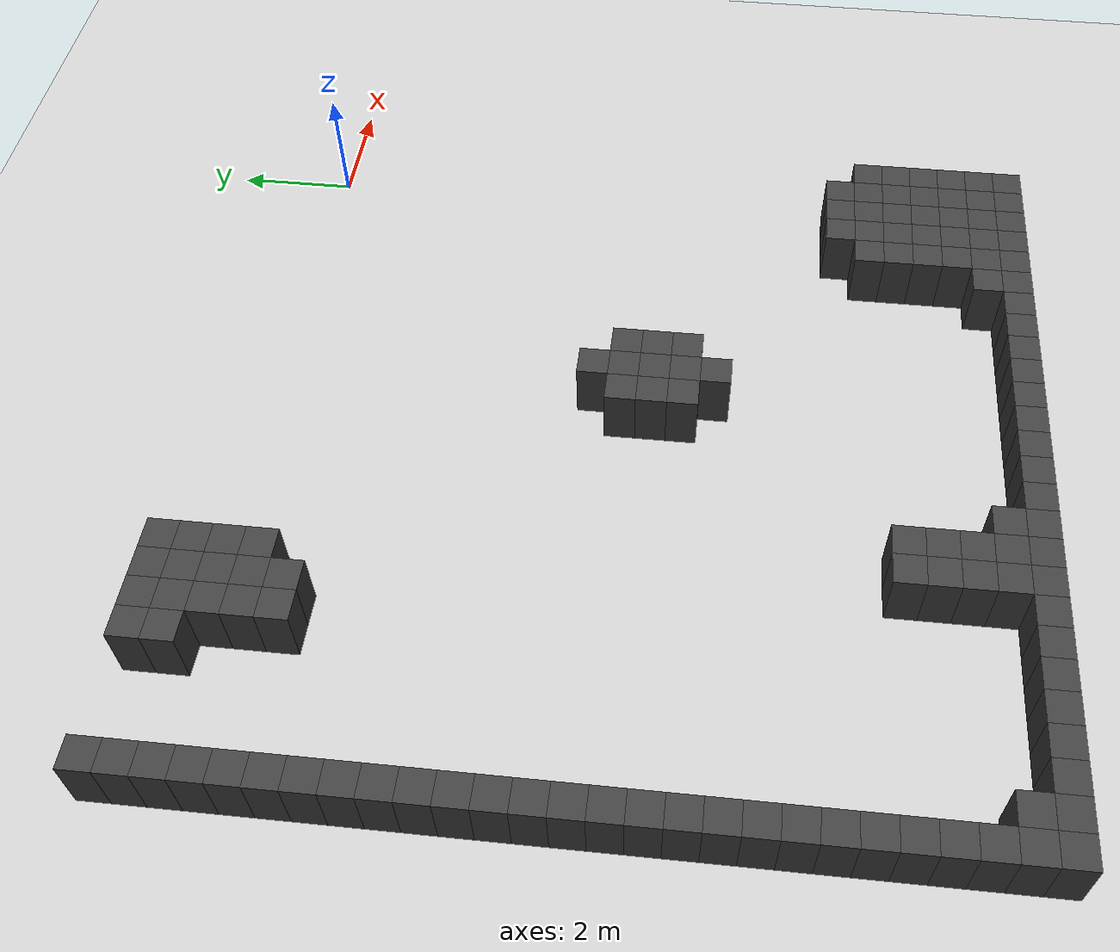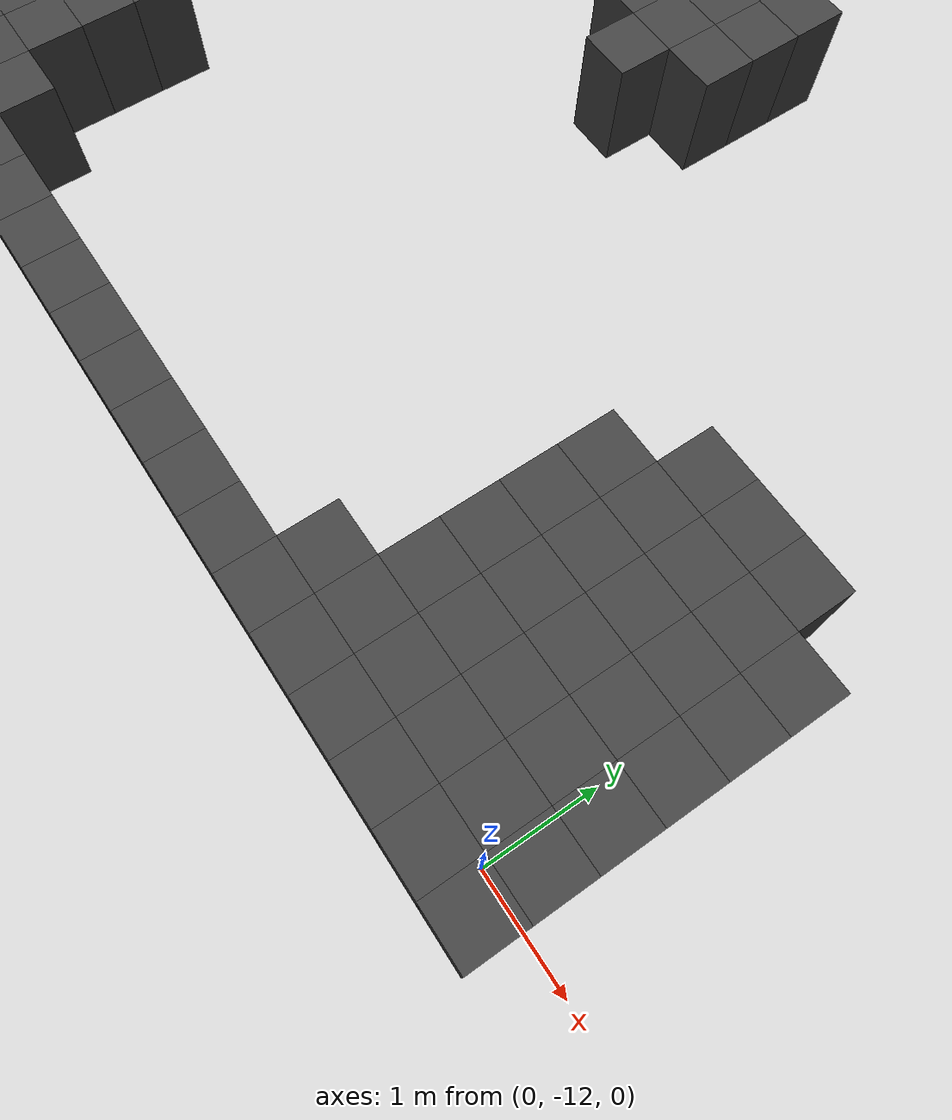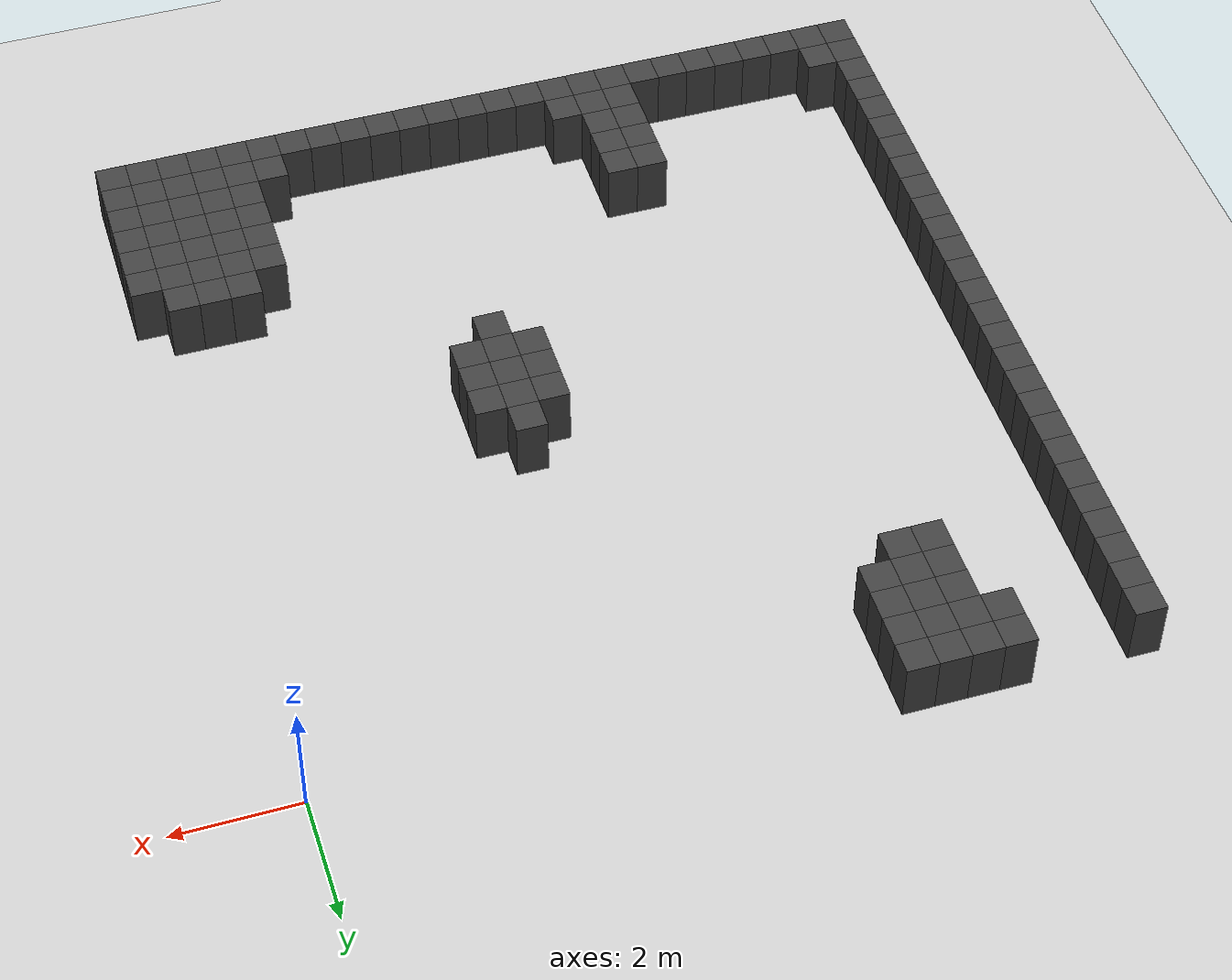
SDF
<sdf version="1.7">
 <world name="map_5836">
  <model name="ground_plane">
   <static>true</static>
   <link name="link">
    <collision name="collision">
     <geometry><plane><normal>0 0 1</normal><size>200 200</size></plane></geometry>
    </collision>
    <visual name="visual">
     <geometry><plane><normal>0 0 1</normal><size>200 200</size></plane></geometry>
     <material><ambient>0.8 0.8 0.8 1</ambient><diffuse>0.8 0.8 0.8 1</diffuse></material>
    </visual>
   </link>
  </model>
  <model name="maze_environment">
   <static>true</static>
   <link name="wall_254">
    <pose>-12.250 0.750 0.500 0 0 0</pose>
    <collision name="col"><geometry><box><size>0.5 0.5 1.0</size></box></geometry></collision>
    <visual name="vis">
     <geometry><box><size>0.5 0.5 1.0</size></box></geometry>
     <material><ambient>0.15 0.15 0.15 1</ambient><diffuse>0.25 0.25 0.25 1</diffuse></material>
    </visual>
   </link>
   <link name="wall_255">
    <pose>-10.250 0.750 0.500 0 0 0</pose>
    <collision name="col"><geometry><box><size>0.5 0.5 1.0</size></box></geometry></collision>
    <visual name="vis">
     <geometry><box><size>0.5 0.5 1.0</size></box></geometry>
     <material><ambient>0.15 0.15 0.15 1</ambient><diffuse>0.25 0.25 0.25 1</diffuse></material>
    </visual>
   </link>
   <link name="wall_256">
    <pose>-9.750 0.750 0.500 0 0 0</pose>
    <collision name="col"><geometry><box><size>0.5 0.5 1.0</size></box></geometry></collision>
    <visual name="vis">
     <geometry><box><size>0.5 0.5 1.0</size></box></geometry>
     <material><ambient>0.15 0.15 0.15 1</ambient><diffuse>0.25 0.25 0.25 1</diffuse></material>
    </visual>
   </link>
   <link name="wall_257">
    <pose>-9.250 0.750 0.500 0 0 0</pose>
    <collision name="col"><geometry><box><size>0.5 0.5 1.0</size></box></geometry></collision>
    <visual name="vis">
     <geometry><box><size>0.5 0.5 1.0</size></box></geometry>
     <material><ambient>0.15 0.15 0.15 1</ambient><diffuse>0.25 0.25 0.25 1</diffuse></material>
    </visual>
   </link>
   <link name="wall_258">
    <pose>-8.750 0.750 0.500 0 0 0</pose>
    <collision name="col"><geometry><box><size>0.5 0.5 1.0</size></box></geometry></collision>
    <visual name="vis">
     <geometry><box><size>0.5 0.5 1.0</size></box></geometry>
     <material><ambient>0.15 0.15 0.15 1</ambient><diffuse>0.25 0.25 0.25 1</diffuse></material>
    </visual>
   </link>
   <link name="wall_265">
    <pose>-12.250 0.250 0.500 0 0 0</pose>
    <collision name="col"><geometry><box><size>0.5 0.5 1.0</size></box></geometry></collision>
    <visual name="vis">
     <geometry><box><size>0.5 0.5 1.0</size></box></geometry>
     <material><ambient>0.15 0.15 0.15 1</ambient><diffuse>0.25 0.25 0.25 1</diffuse></material>
    </visual>
   </link>
   <link name="wall_266">
    <pose>-10.250 0.250 0.500 0 0 0</pose>
    <collision name="col"><geometry><box><size>0.5 0.5 1.0</size></box></geometry></collision>
    <visual name="vis">
     <geometry><box><size>0.5 0.5 1.0</size></box></geometry>
     <material><ambient>0.15 0.15 0.15 1</ambient><diffuse>0.25 0.25 0.25 1</diffuse></material>
    </visual>
   </link>
   <link name="wall_267">
    <pose>-9.750 0.250 0.500 0 0 0</pose>
    <collision name="col"><geometry><box><size>0.5 0.5 1.0</size></box></geometry></collision>
    <visual name="vis">
     <geometry><box><size>0.5 0.5 1.0</size></box></geometry>
     <material><ambient>0.15 0.15 0.15 1</ambient><diffuse>0.25 0.25 0.25 1</diffuse></material>
    </visual>
   </link>
   <link name="wall_268">
    <pose>-9.250 0.250 0.500 0 0 0</pose>
    <collision name="col"><geometry><box><size>0.5 0.5 1.0</size></box></geometry></collision>
    <visual name="vis">
     <geometry><box><size>0.5 0.5 1.0</size></box></geometry>
     <material><ambient>0.15 0.15 0.15 1</ambient><diffuse>0.25 0.25 0.25 1</diffuse></material>
    </visual>
   </link>
   <link name="wall_269">
    <pose>-8.750 0.250 0.500 0 0 0</pose>
    <collision name="col"><geometry><box><size>0.5 0.5 1.0</size></box></geometry></collision>
    <visual name="vis">
     <geometry><box><size>0.5 0.5 1.0</size></box></geometry>
     <material><ambient>0.15 0.15 0.15 1</ambient><diffuse>0.25 0.25 0.25 1</diffuse></material>
    </visual>
   </link>
   <link name="wall_274">
    <pose>-12.250 -0.250 0.500 0 0 0</pose>
    <collision name="col"><geometry><box><size>0.5 0.5 1.0</size></box></geometry></collision>
    <visual name="vis">
     <geometry><box><size>0.5 0.5 1.0</size></box></geometry>
     <material><ambient>0.15 0.15 0.15 1</ambient><diffuse>0.25 0.25 0.25 1</diffuse></material>
    </visual>
   </link>
   <link name="wall_275">
    <pose>-9.750 -0.250 0.500 0 0 0</pose>
    <collision name="col"><geometry><box><size>0.5 0.5 1.0</size></box></geometry></collision>
    <visual name="vis">
     <geometry><box><size>0.5 0.5 1.0</size></box></geometry>
     <material><ambient>0.15 0.15 0.15 1</ambient><diffuse>0.25 0.25 0.25 1</diffuse></material>
    </visual>
   </link>
   <link name="wall_276">
    <pose>-9.250 -0.250 0.500 0 0 0</pose>
    <collision name="col"><geometry><box><size>0.5 0.5 1.0</size></box></geometry></collision>
    <visual name="vis">
     <geometry><box><size>0.5 0.5 1.0</size></box></geometry>
     <material><ambient>0.15 0.15 0.15 1</ambient><diffuse>0.25 0.25 0.25 1</diffuse></material>
    </visual>
   </link>
   <link name="wall_277">
    <pose>-8.750 -0.250 0.500 0 0 0</pose>
    <collision name="col"><geometry><box><size>0.5 0.5 1.0</size></box></geometry></collision>
    <visual name="vis">
     <geometry><box><size>0.5 0.5 1.0</size></box></geometry>
     <material><ambient>0.15 0.15 0.15 1</ambient><diffuse>0.25 0.25 0.25 1</diffuse></material>
    </visual>
   </link>
   <link name="wall_282">
    <pose>-12.250 -0.750 0.500 0 0 0</pose>
    <collision name="col"><geometry><box><size>0.5 0.5 1.0</size></box></geometry></collision>
    <visual name="vis">
     <geometry><box><size>0.5 0.5 1.0</size></box></geometry>
     <material><ambient>0.15 0.15 0.15 1</ambient><diffuse>0.25 0.25 0.25 1</diffuse></material>
    </visual>
   </link>
   <link name="wall_283">
    <pose>-9.750 -0.750 0.500 0 0 0</pose>
    <collision name="col"><geometry><box><size>0.5 0.5 1.0</size></box></geometry></collision>
    <visual name="vis">
     <geometry><box><size>0.5 0.5 1.0</size></box></geometry>
     <material><ambient>0.15 0.15 0.15 1</ambient><diffuse>0.25 0.25 0.25 1</diffuse></material>
    </visual>
   </link>
   <link name="wall_284">
    <pose>-9.250 -0.750 0.500 0 0 0</pose>
    <collision name="col"><geometry><box><size>0.5 0.5 1.0</size></box></geometry></collision>
    <visual name="vis">
     <geometry><box><size>0.5 0.5 1.0</size></box></geometry>
     <material><ambient>0.15 0.15 0.15 1</ambient><diffuse>0.25 0.25 0.25 1</diffuse></material>
    </visual>
   </link>
   <link name="wall_285">
    <pose>-8.750 -0.750 0.500 0 0 0</pose>
    <collision name="col"><geometry><box><size>0.5 0.5 1.0</size></box></geometry></collision>
    <visual name="vis">
     <geometry><box><size>0.5 0.5 1.0</size></box></geometry>
     <material><ambient>0.15 0.15 0.15 1</ambient><diffuse>0.25 0.25 0.25 1</diffuse></material>
    </visual>
   </link>
   <link name="wall_295">
    <pose>-12.250 -1.250 0.500 0 0 0</pose>
    <collision name="col"><geometry><box><size>0.5 0.5 1.0</size></box></geometry></collision>
    <visual name="vis">
     <geometry><box><size>0.5 0.5 1.0</size></box></geometry>
     <material><ambient>0.15 0.15 0.15 1</ambient><diffuse>0.25 0.25 0.25 1</diffuse></material>
    </visual>
   </link>
   <link name="wall_296">
    <pose>-9.750 -1.250 0.500 0 0 0</pose>
    <collision name="col"><geometry><box><size>0.5 0.5 1.0</size></box></geometry></collision>
    <visual name="vis">
     <geometry><box><size>0.5 0.5 1.0</size></box></geometry>
     <material><ambient>0.15 0.15 0.15 1</ambient><diffuse>0.25 0.25 0.25 1</diffuse></material>
    </visual>
   </link>
   <link name="wall_297">
    <pose>-9.250 -1.250 0.500 0 0 0</pose>
    <collision name="col"><geometry><box><size>0.5 0.5 1.0</size></box></geometry></collision>
    <visual name="vis">
     <geometry><box><size>0.5 0.5 1.0</size></box></geometry>
     <material><ambient>0.15 0.15 0.15 1</ambient><diffuse>0.25 0.25 0.25 1</diffuse></material>
    </visual>
   </link>
   <link name="wall_307">
    <pose>-12.250 -1.750 0.500 0 0 0</pose>
    <collision name="col"><geometry><box><size>0.5 0.5 1.0</size></box></geometry></collision>
    <visual name="vis">
     <geometry><box><size>0.5 0.5 1.0</size></box></geometry>
     <material><ambient>0.15 0.15 0.15 1</ambient><diffuse>0.25 0.25 0.25 1</diffuse></material>
    </visual>
   </link>
   <link name="wall_314">
    <pose>-12.250 -2.250 0.500 0 0 0</pose>
    <collision name="col"><geometry><box><size>0.5 0.5 1.0</size></box></geometry></collision>
    <visual name="vis">
     <geometry><box><size>0.5 0.5 1.0</size></box></geometry>
     <material><ambient>0.15 0.15 0.15 1</ambient><diffuse>0.25 0.25 0.25 1</diffuse></material>
    </visual>
   </link>
   <link name="wall_317">
    <pose>-12.250 -2.750 0.500 0 0 0</pose>
    <collision name="col"><geometry><box><size>0.5 0.5 1.0</size></box></geometry></collision>
    <visual name="vis">
     <geometry><box><size>0.5 0.5 1.0</size></box></geometry>
     <material><ambient>0.15 0.15 0.15 1</ambient><diffuse>0.25 0.25 0.25 1</diffuse></material>
    </visual>
   </link>
   <link name="wall_319">
    <pose>-12.250 -3.250 0.500 0 0 0</pose>
    <collision name="col"><geometry><box><size>0.5 0.5 1.0</size></box></geometry></collision>
    <visual name="vis">
     <geometry><box><size>0.5 0.5 1.0</size></box></geometry>
     <material><ambient>0.15 0.15 0.15 1</ambient><diffuse>0.25 0.25 0.25 1</diffuse></material>
    </visual>
   </link>
   <link name="wall_321">
    <pose>-12.250 -3.750 0.500 0 0 0</pose>
    <collision name="col"><geometry><box><size>0.5 0.5 1.0</size></box></geometry></collision>
    <visual name="vis">
     <geometry><box><size>0.5 0.5 1.0</size></box></geometry>
     <material><ambient>0.15 0.15 0.15 1</ambient><diffuse>0.25 0.25 0.25 1</diffuse></material>
    </visual>
   </link>
   <link name="wall_323">
    <pose>-12.250 -4.250 0.500 0 0 0</pose>
    <collision name="col"><geometry><box><size>0.5 0.5 1.0</size></box></geometry></collision>
    <visual name="vis">
     <geometry><box><size>0.5 0.5 1.0</size></box></geometry>
     <material><ambient>0.15 0.15 0.15 1</ambient><diffuse>0.25 0.25 0.25 1</diffuse></material>
    </visual>
   </link>
   <link name="wall_325">
    <pose>-12.250 -4.750 0.500 0 0 0</pose>
    <collision name="col"><geometry><box><size>0.5 0.5 1.0</size></box></geometry></collision>
    <visual name="vis">
     <geometry><box><size>0.5 0.5 1.0</size></box></geometry>
     <material><ambient>0.15 0.15 0.15 1</ambient><diffuse>0.25 0.25 0.25 1</diffuse></material>
    </visual>
   </link>
   <link name="wall_327">
    <pose>-12.250 -5.250 0.500 0 0 0</pose>
    <collision name="col"><geometry><box><size>0.5 0.5 1.0</size></box></geometry></collision>
    <visual name="vis">
     <geometry><box><size>0.5 0.5 1.0</size></box></geometry>
     <material><ambient>0.15 0.15 0.15 1</ambient><diffuse>0.25 0.25 0.25 1</diffuse></material>
    </visual>
   </link>
   <link name="wall_328">
    <pose>-4.750 -5.250 0.500 0 0 0</pose>
    <collision name="col"><geometry><box><size>0.5 0.5 1.0</size></box></geometry></collision>
    <visual name="vis">
     <geometry><box><size>0.5 0.5 1.0</size></box></geometry>
     <material><ambient>0.15 0.15 0.15 1</ambient><diffuse>0.25 0.25 0.25 1</diffuse></material>
    </visual>
   </link>
   <link name="wall_330">
    <pose>-12.250 -5.750 0.500 0 0 0</pose>
    <collision name="col"><geometry><box><size>0.5 0.5 1.0</size></box></geometry></collision>
    <visual name="vis">
     <geometry><box><size>0.5 0.5 1.0</size></box></geometry>
     <material><ambient>0.15 0.15 0.15 1</ambient><diffuse>0.25 0.25 0.25 1</diffuse></material>
    </visual>
   </link>
   <link name="wall_331">
    <pose>-5.250 -5.750 0.500 0 0 0</pose>
    <collision name="col"><geometry><box><size>0.5 0.5 1.0</size></box></geometry></collision>
    <visual name="vis">
     <geometry><box><size>0.5 0.5 1.0</size></box></geometry>
     <material><ambient>0.15 0.15 0.15 1</ambient><diffuse>0.25 0.25 0.25 1</diffuse></material>
    </visual>
   </link>
   <link name="wall_332">
    <pose>-4.750 -5.750 0.500 0 0 0</pose>
    <collision name="col"><geometry><box><size>0.5 0.5 1.0</size></box></geometry></collision>
    <visual name="vis">
     <geometry><box><size>0.5 0.5 1.0</size></box></geometry>
     <material><ambient>0.15 0.15 0.15 1</ambient><diffuse>0.25 0.25 0.25 1</diffuse></material>
    </visual>
   </link>
   <link name="wall_333">
    <pose>-4.250 -5.750 0.500 0 0 0</pose>
    <collision name="col"><geometry><box><size>0.5 0.5 1.0</size></box></geometry></collision>
    <visual name="vis">
     <geometry><box><size>0.5 0.5 1.0</size></box></geometry>
     <material><ambient>0.15 0.15 0.15 1</ambient><diffuse>0.25 0.25 0.25 1</diffuse></material>
    </visual>
   </link>
   <link name="wall_335">
    <pose>-12.250 -6.250 0.500 0 0 0</pose>
    <collision name="col"><geometry><box><size>0.5 0.5 1.0</size></box></geometry></collision>
    <visual name="vis">
     <geometry><box><size>0.5 0.5 1.0</size></box></geometry>
     <material><ambient>0.15 0.15 0.15 1</ambient><diffuse>0.25 0.25 0.25 1</diffuse></material>
    </visual>
   </link>
   <link name="wall_336">
    <pose>-5.250 -6.250 0.500 0 0 0</pose>
    <collision name="col"><geometry><box><size>0.5 0.5 1.0</size></box></geometry></collision>
    <visual name="vis">
     <geometry><box><size>0.5 0.5 1.0</size></box></geometry>
     <material><ambient>0.15 0.15 0.15 1</ambient><diffuse>0.25 0.25 0.25 1</diffuse></material>
    </visual>
   </link>
   <link name="wall_337">
    <pose>-4.750 -6.250 0.500 0 0 0</pose>
    <collision name="col"><geometry><box><size>0.5 0.5 1.0</size></box></geometry></collision>
    <visual name="vis">
     <geometry><box><size>0.5 0.5 1.0</size></box></geometry>
     <material><ambient>0.15 0.15 0.15 1</ambient><diffuse>0.25 0.25 0.25 1</diffuse></material>
    </visual>
   </link>
   <link name="wall_338">
    <pose>-4.250 -6.250 0.500 0 0 0</pose>
    <collision name="col"><geometry><box><size>0.5 0.5 1.0</size></box></geometry></collision>
    <visual name="vis">
     <geometry><box><size>0.5 0.5 1.0</size></box></geometry>
     <material><ambient>0.15 0.15 0.15 1</ambient><diffuse>0.25 0.25 0.25 1</diffuse></material>
    </visual>
   </link>
   <link name="wall_340">
    <pose>-12.250 -6.750 0.500 0 0 0</pose>
    <collision name="col"><geometry><box><size>0.5 0.5 1.0</size></box></geometry></collision>
    <visual name="vis">
     <geometry><box><size>0.5 0.5 1.0</size></box></geometry>
     <material><ambient>0.15 0.15 0.15 1</ambient><diffuse>0.25 0.25 0.25 1</diffuse></material>
    </visual>
   </link>
   <link name="wall_341">
    <pose>-5.250 -6.750 0.500 0 0 0</pose>
    <collision name="col"><geometry><box><size>0.5 0.5 1.0</size></box></geometry></collision>
    <visual name="vis">
     <geometry><box><size>0.5 0.5 1.0</size></box></geometry>
     <material><ambient>0.15 0.15 0.15 1</ambient><diffuse>0.25 0.25 0.25 1</diffuse></material>
    </visual>
   </link>
   <link name="wall_342">
    <pose>-4.750 -6.750 0.500 0 0 0</pose>
    <collision name="col"><geometry><box><size>0.5 0.5 1.0</size></box></geometry></collision>
    <visual name="vis">
     <geometry><box><size>0.5 0.5 1.0</size></box></geometry>
     <material><ambient>0.15 0.15 0.15 1</ambient><diffuse>0.25 0.25 0.25 1</diffuse></material>
    </visual>
   </link>
   <link name="wall_343">
    <pose>-4.250 -6.750 0.500 0 0 0</pose>
    <collision name="col"><geometry><box><size>0.5 0.5 1.0</size></box></geometry></collision>
    <visual name="vis">
     <geometry><box><size>0.5 0.5 1.0</size></box></geometry>
     <material><ambient>0.15 0.15 0.15 1</ambient><diffuse>0.25 0.25 0.25 1</diffuse></material>
    </visual>
   </link>
   <link name="wall_345">
    <pose>-12.250 -7.250 0.500 0 0 0</pose>
    <collision name="col"><geometry><box><size>0.5 0.5 1.0</size></box></geometry></collision>
    <visual name="vis">
     <geometry><box><size>0.5 0.5 1.0</size></box></geometry>
     <material><ambient>0.15 0.15 0.15 1</ambient><diffuse>0.25 0.25 0.25 1</diffuse></material>
    </visual>
   </link>
   <link name="wall_346">
    <pose>-4.750 -7.250 0.500 0 0 0</pose>
    <collision name="col"><geometry><box><size>0.5 0.5 1.0</size></box></geometry></collision>
    <visual name="vis">
     <geometry><box><size>0.5 0.5 1.0</size></box></geometry>
     <material><ambient>0.15 0.15 0.15 1</ambient><diffuse>0.25 0.25 0.25 1</diffuse></material>
    </visual>
   </link>
   <link name="wall_348">
    <pose>-12.250 -7.750 0.500 0 0 0</pose>
    <collision name="col"><geometry><box><size>0.5 0.5 1.0</size></box></geometry></collision>
    <visual name="vis">
     <geometry><box><size>0.5 0.5 1.0</size></box></geometry>
     <material><ambient>0.15 0.15 0.15 1</ambient><diffuse>0.25 0.25 0.25 1</diffuse></material>
    </visual>
   </link>
   <link name="wall_350">
    <pose>-12.250 -8.250 0.500 0 0 0</pose>
    <collision name="col"><geometry><box><size>0.5 0.5 1.0</size></box></geometry></collision>
    <visual name="vis">
     <geometry><box><size>0.5 0.5 1.0</size></box></geometry>
     <material><ambient>0.15 0.15 0.15 1</ambient><diffuse>0.25 0.25 0.25 1</diffuse></material>
    </visual>
   </link>
   <link name="wall_352">
    <pose>-12.250 -8.750 0.500 0 0 0</pose>
    <collision name="col"><geometry><box><size>0.5 0.5 1.0</size></box></geometry></collision>
    <visual name="vis">
     <geometry><box><size>0.5 0.5 1.0</size></box></geometry>
     <material><ambient>0.15 0.15 0.15 1</ambient><diffuse>0.25 0.25 0.25 1</diffuse></material>
    </visual>
   </link>
   <link name="wall_355">
    <pose>-12.250 -9.250 0.500 0 0 0</pose>
    <collision name="col"><geometry><box><size>0.5 0.5 1.0</size></box></geometry></collision>
    <visual name="vis">
     <geometry><box><size>0.5 0.5 1.0</size></box></geometry>
     <material><ambient>0.15 0.15 0.15 1</ambient><diffuse>0.25 0.25 0.25 1</diffuse></material>
    </visual>
   </link>
   <link name="wall_356">
    <pose>-1.250 -9.250 0.500 0 0 0</pose>
    <collision name="col"><geometry><box><size>0.5 0.5 1.0</size></box></geometry></collision>
    <visual name="vis">
     <geometry><box><size>0.5 0.5 1.0</size></box></geometry>
     <material><ambient>0.15 0.15 0.15 1</ambient><diffuse>0.25 0.25 0.25 1</diffuse></material>
    </visual>
   </link>
   <link name="wall_357">
    <pose>-0.750 -9.250 0.500 0 0 0</pose>
    <collision name="col"><geometry><box><size>0.5 0.5 1.0</size></box></geometry></collision>
    <visual name="vis">
     <geometry><box><size>0.5 0.5 1.0</size></box></geometry>
     <material><ambient>0.15 0.15 0.15 1</ambient><diffuse>0.25 0.25 0.25 1</diffuse></material>
    </visual>
   </link>
   <link name="wall_358">
    <pose>-0.250 -9.250 0.500 0 0 0</pose>
    <collision name="col"><geometry><box><size>0.5 0.5 1.0</size></box></geometry></collision>
    <visual name="vis">
     <geometry><box><size>0.5 0.5 1.0</size></box></geometry>
     <material><ambient>0.15 0.15 0.15 1</ambient><diffuse>0.25 0.25 0.25 1</diffuse></material>
    </visual>
   </link>
   <link name="wall_361">
    <pose>-12.250 -9.750 0.500 0 0 0</pose>
    <collision name="col"><geometry><box><size>0.5 0.5 1.0</size></box></geometry></collision>
    <visual name="vis">
     <geometry><box><size>0.5 0.5 1.0</size></box></geometry>
     <material><ambient>0.15 0.15 0.15 1</ambient><diffuse>0.25 0.25 0.25 1</diffuse></material>
    </visual>
   </link>
   <link name="wall_362">
    <pose>-1.750 -9.750 0.500 0 0 0</pose>
    <collision name="col"><geometry><box><size>0.5 0.5 1.0</size></box></geometry></collision>
    <visual name="vis">
     <geometry><box><size>0.5 0.5 1.0</size></box></geometry>
     <material><ambient>0.15 0.15 0.15 1</ambient><diffuse>0.25 0.25 0.25 1</diffuse></material>
    </visual>
   </link>
   <link name="wall_363">
    <pose>-1.250 -9.750 0.500 0 0 0</pose>
    <collision name="col"><geometry><box><size>0.5 0.5 1.0</size></box></geometry></collision>
    <visual name="vis">
     <geometry><box><size>0.5 0.5 1.0</size></box></geometry>
     <material><ambient>0.15 0.15 0.15 1</ambient><diffuse>0.25 0.25 0.25 1</diffuse></material>
    </visual>
   </link>
   <link name="wall_364">
    <pose>-0.750 -9.750 0.500 0 0 0</pose>
    <collision name="col"><geometry><box><size>0.5 0.5 1.0</size></box></geometry></collision>
    <visual name="vis">
     <geometry><box><size>0.5 0.5 1.0</size></box></geometry>
     <material><ambient>0.15 0.15 0.15 1</ambient><diffuse>0.25 0.25 0.25 1</diffuse></material>
    </visual>
   </link>
   <link name="wall_365">
    <pose>-0.250 -9.750 0.500 0 0 0</pose>
    <collision name="col"><geometry><box><size>0.5 0.5 1.0</size></box></geometry></collision>
    <visual name="vis">
     <geometry><box><size>0.5 0.5 1.0</size></box></geometry>
     <material><ambient>0.15 0.15 0.15 1</ambient><diffuse>0.25 0.25 0.25 1</diffuse></material>
    </visual>
   </link>
   <link name="wall_366">
    <pose>0.250 -9.750 0.500 0 0 0</pose>
    <collision name="col"><geometry><box><size>0.5 0.5 1.0</size></box></geometry></collision>
    <visual name="vis">
     <geometry><box><size>0.5 0.5 1.0</size></box></geometry>
     <material><ambient>0.15 0.15 0.15 1</ambient><diffuse>0.25 0.25 0.25 1</diffuse></material>
    </visual>
   </link>
   <link name="wall_369">
    <pose>-12.250 -10.250 0.500 0 0 0</pose>
    <collision name="col"><geometry><box><size>0.5 0.5 1.0</size></box></geometry></collision>
    <visual name="vis">
     <geometry><box><size>0.5 0.5 1.0</size></box></geometry>
     <material><ambient>0.15 0.15 0.15 1</ambient><diffuse>0.25 0.25 0.25 1</diffuse></material>
    </visual>
   </link>
   <link name="wall_370">
    <pose>-8.250 -10.250 0.500 0 0 0</pose>
    <collision name="col"><geometry><box><size>0.5 0.5 1.0</size></box></geometry></collision>
    <visual name="vis">
     <geometry><box><size>0.5 0.5 1.0</size></box></geometry>
     <material><ambient>0.15 0.15 0.15 1</ambient><diffuse>0.25 0.25 0.25 1</diffuse></material>
    </visual>
   </link>
   <link name="wall_371">
    <pose>-7.750 -10.250 0.500 0 0 0</pose>
    <collision name="col"><geometry><box><size>0.5 0.5 1.0</size></box></geometry></collision>
    <visual name="vis">
     <geometry><box><size>0.5 0.5 1.0</size></box></geometry>
     <material><ambient>0.15 0.15 0.15 1</ambient><diffuse>0.25 0.25 0.25 1</diffuse></material>
    </visual>
   </link>
   <link name="wall_372">
    <pose>-1.750 -10.250 0.500 0 0 0</pose>
    <collision name="col"><geometry><box><size>0.5 0.5 1.0</size></box></geometry></collision>
    <visual name="vis">
     <geometry><box><size>0.5 0.5 1.0</size></box></geometry>
     <material><ambient>0.15 0.15 0.15 1</ambient><diffuse>0.25 0.25 0.25 1</diffuse></material>
    </visual>
   </link>
   <link name="wall_373">
    <pose>-1.250 -10.250 0.500 0 0 0</pose>
    <collision name="col"><geometry><box><size>0.5 0.5 1.0</size></box></geometry></collision>
    <visual name="vis">
     <geometry><box><size>0.5 0.5 1.0</size></box></geometry>
     <material><ambient>0.15 0.15 0.15 1</ambient><diffuse>0.25 0.25 0.25 1</diffuse></material>
    </visual>
   </link>
   <link name="wall_374">
    <pose>-0.750 -10.250 0.500 0 0 0</pose>
    <collision name="col"><geometry><box><size>0.5 0.5 1.0</size></box></geometry></collision>
    <visual name="vis">
     <geometry><box><size>0.5 0.5 1.0</size></box></geometry>
     <material><ambient>0.15 0.15 0.15 1</ambient><diffuse>0.25 0.25 0.25 1</diffuse></material>
    </visual>
   </link>
   <link name="wall_375">
    <pose>-0.250 -10.250 0.500 0 0 0</pose>
    <collision name="col"><geometry><box><size>0.5 0.5 1.0</size></box></geometry></collision>
    <visual name="vis">
     <geometry><box><size>0.5 0.5 1.0</size></box></geometry>
     <material><ambient>0.15 0.15 0.15 1</ambient><diffuse>0.25 0.25 0.25 1</diffuse></material>
    </visual>
   </link>
   <link name="wall_376">
    <pose>0.250 -10.250 0.500 0 0 0</pose>
    <collision name="col"><geometry><box><size>0.5 0.5 1.0</size></box></geometry></collision>
    <visual name="vis">
     <geometry><box><size>0.5 0.5 1.0</size></box></geometry>
     <material><ambient>0.15 0.15 0.15 1</ambient><diffuse>0.25 0.25 0.25 1</diffuse></material>
    </visual>
   </link>
   <link name="wall_378">
    <pose>-12.250 -10.750 0.500 0 0 0</pose>
    <collision name="col"><geometry><box><size>0.5 0.5 1.0</size></box></geometry></collision>
    <visual name="vis">
     <geometry><box><size>0.5 0.5 1.0</size></box></geometry>
     <material><ambient>0.15 0.15 0.15 1</ambient><diffuse>0.25 0.25 0.25 1</diffuse></material>
    </visual>
   </link>
   <link name="wall_379">
    <pose>-8.250 -10.750 0.500 0 0 0</pose>
    <collision name="col"><geometry><box><size>0.5 0.5 1.0</size></box></geometry></collision>
    <visual name="vis">
     <geometry><box><size>0.5 0.5 1.0</size></box></geometry>
     <material><ambient>0.15 0.15 0.15 1</ambient><diffuse>0.25 0.25 0.25 1</diffuse></material>
    </visual>
   </link>
   <link name="wall_380">
    <pose>-7.750 -10.750 0.500 0 0 0</pose>
    <collision name="col"><geometry><box><size>0.5 0.5 1.0</size></box></geometry></collision>
    <visual name="vis">
     <geometry><box><size>0.5 0.5 1.0</size></box></geometry>
     <material><ambient>0.15 0.15 0.15 1</ambient><diffuse>0.25 0.25 0.25 1</diffuse></material>
    </visual>
   </link>
   <link name="wall_381">
    <pose>-1.750 -10.750 0.500 0 0 0</pose>
    <collision name="col"><geometry><box><size>0.5 0.5 1.0</size></box></geometry></collision>
    <visual name="vis">
     <geometry><box><size>0.5 0.5 1.0</size></box></geometry>
     <material><ambient>0.15 0.15 0.15 1</ambient><diffuse>0.25 0.25 0.25 1</diffuse></material>
    </visual>
   </link>
   <link name="wall_382">
    <pose>-1.250 -10.750 0.500 0 0 0</pose>
    <collision name="col"><geometry><box><size>0.5 0.5 1.0</size></box></geometry></collision>
    <visual name="vis">
     <geometry><box><size>0.5 0.5 1.0</size></box></geometry>
     <material><ambient>0.15 0.15 0.15 1</ambient><diffuse>0.25 0.25 0.25 1</diffuse></material>
    </visual>
   </link>
   <link name="wall_383">
    <pose>-0.750 -10.750 0.500 0 0 0</pose>
    <collision name="col"><geometry><box><size>0.5 0.5 1.0</size></box></geometry></collision>
    <visual name="vis">
     <geometry><box><size>0.5 0.5 1.0</size></box></geometry>
     <material><ambient>0.15 0.15 0.15 1</ambient><diffuse>0.25 0.25 0.25 1</diffuse></material>
    </visual>
   </link>
   <link name="wall_384">
    <pose>-0.250 -10.750 0.500 0 0 0</pose>
    <collision name="col"><geometry><box><size>0.5 0.5 1.0</size></box></geometry></collision>
    <visual name="vis">
     <geometry><box><size>0.5 0.5 1.0</size></box></geometry>
     <material><ambient>0.15 0.15 0.15 1</ambient><diffuse>0.25 0.25 0.25 1</diffuse></material>
    </visual>
   </link>
   <link name="wall_385">
    <pose>0.250 -10.750 0.500 0 0 0</pose>
    <collision name="col"><geometry><box><size>0.5 0.5 1.0</size></box></geometry></collision>
    <visual name="vis">
     <geometry><box><size>0.5 0.5 1.0</size></box></geometry>
     <material><ambient>0.15 0.15 0.15 1</ambient><diffuse>0.25 0.25 0.25 1</diffuse></material>
    </visual>
   </link>
   <link name="wall_391">
    <pose>-12.250 -11.250 0.500 0 0 0</pose>
    <collision name="col"><geometry><box><size>0.5 0.5 1.0</size></box></geometry></collision>
    <visual name="vis">
     <geometry><box><size>0.5 0.5 1.0</size></box></geometry>
     <material><ambient>0.15 0.15 0.15 1</ambient><diffuse>0.25 0.25 0.25 1</diffuse></material>
    </visual>
   </link>
   <link name="wall_392">
    <pose>-8.250 -11.250 0.500 0 0 0</pose>
    <collision name="col"><geometry><box><size>0.5 0.5 1.0</size></box></geometry></collision>
    <visual name="vis">
     <geometry><box><size>0.5 0.5 1.0</size></box></geometry>
     <material><ambient>0.15 0.15 0.15 1</ambient><diffuse>0.25 0.25 0.25 1</diffuse></material>
    </visual>
   </link>
   <link name="wall_393">
    <pose>-7.750 -11.250 0.500 0 0 0</pose>
    <collision name="col"><geometry><box><size>0.5 0.5 1.0</size></box></geometry></collision>
    <visual name="vis">
     <geometry><box><size>0.5 0.5 1.0</size></box></geometry>
     <material><ambient>0.15 0.15 0.15 1</ambient><diffuse>0.25 0.25 0.25 1</diffuse></material>
    </visual>
   </link>
   <link name="wall_394">
    <pose>-1.750 -11.250 0.500 0 0 0</pose>
    <collision name="col"><geometry><box><size>0.5 0.5 1.0</size></box></geometry></collision>
    <visual name="vis">
     <geometry><box><size>0.5 0.5 1.0</size></box></geometry>
     <material><ambient>0.15 0.15 0.15 1</ambient><diffuse>0.25 0.25 0.25 1</diffuse></material>
    </visual>
   </link>
   <link name="wall_395">
    <pose>-1.250 -11.250 0.500 0 0 0</pose>
    <collision name="col"><geometry><box><size>0.5 0.5 1.0</size></box></geometry></collision>
    <visual name="vis">
     <geometry><box><size>0.5 0.5 1.0</size></box></geometry>
     <material><ambient>0.15 0.15 0.15 1</ambient><diffuse>0.25 0.25 0.25 1</diffuse></material>
    </visual>
   </link>
   <link name="wall_396">
    <pose>-0.750 -11.250 0.500 0 0 0</pose>
    <collision name="col"><geometry><box><size>0.5 0.5 1.0</size></box></geometry></collision>
    <visual name="vis">
     <geometry><box><size>0.5 0.5 1.0</size></box></geometry>
     <material><ambient>0.15 0.15 0.15 1</ambient><diffuse>0.25 0.25 0.25 1</diffuse></material>
    </visual>
   </link>
   <link name="wall_397">
    <pose>-0.250 -11.250 0.500 0 0 0</pose>
    <collision name="col"><geometry><box><size>0.5 0.5 1.0</size></box></geometry></collision>
    <visual name="vis">
     <geometry><box><size>0.5 0.5 1.0</size></box></geometry>
     <material><ambient>0.15 0.15 0.15 1</ambient><diffuse>0.25 0.25 0.25 1</diffuse></material>
    </visual>
   </link>
   <link name="wall_398">
    <pose>0.250 -11.250 0.500 0 0 0</pose>
    <collision name="col"><geometry><box><size>0.5 0.5 1.0</size></box></geometry></collision>
    <visual name="vis">
     <geometry><box><size>0.5 0.5 1.0</size></box></geometry>
     <material><ambient>0.15 0.15 0.15 1</ambient><diffuse>0.25 0.25 0.25 1</diffuse></material>
    </visual>
   </link>
   <link name="wall_405">
    <pose>-12.250 -11.750 0.500 0 0 0</pose>
    <collision name="col"><geometry><box><size>0.5 0.5 1.0</size></box></geometry></collision>
    <visual name="vis">
     <geometry><box><size>0.5 0.5 1.0</size></box></geometry>
     <material><ambient>0.15 0.15 0.15 1</ambient><diffuse>0.25 0.25 0.25 1</diffuse></material>
    </visual>
   </link>
   <link name="wall_406">
    <pose>-11.750 -11.750 0.500 0 0 0</pose>
    <collision name="col"><geometry><box><size>0.5 0.5 1.0</size></box></geometry></collision>
    <visual name="vis">
     <geometry><box><size>0.5 0.5 1.0</size></box></geometry>
     <material><ambient>0.15 0.15 0.15 1</ambient><diffuse>0.25 0.25 0.25 1</diffuse></material>
    </visual>
   </link>
   <link name="wall_407">
    <pose>-8.250 -11.750 0.500 0 0 0</pose>
    <collision name="col"><geometry><box><size>0.5 0.5 1.0</size></box></geometry></collision>
    <visual name="vis">
     <geometry><box><size>0.5 0.5 1.0</size></box></geometry>
     <material><ambient>0.15 0.15 0.15 1</ambient><diffuse>0.25 0.25 0.25 1</diffuse></material>
    </visual>
   </link>
   <link name="wall_408">
    <pose>-7.750 -11.750 0.500 0 0 0</pose>
    <collision name="col"><geometry><box><size>0.5 0.5 1.0</size></box></geometry></collision>
    <visual name="vis">
     <geometry><box><size>0.5 0.5 1.0</size></box></geometry>
     <material><ambient>0.15 0.15 0.15 1</ambient><diffuse>0.25 0.25 0.25 1</diffuse></material>
    </visual>
   </link>
   <link name="wall_409">
    <pose>-7.250 -11.750 0.500 0 0 0</pose>
    <collision name="col"><geometry><box><size>0.5 0.5 1.0</size></box></geometry></collision>
    <visual name="vis">
     <geometry><box><size>0.5 0.5 1.0</size></box></geometry>
     <material><ambient>0.15 0.15 0.15 1</ambient><diffuse>0.25 0.25 0.25 1</diffuse></material>
    </visual>
   </link>
   <link name="wall_410">
    <pose>-2.250 -11.750 0.500 0 0 0</pose>
    <collision name="col"><geometry><box><size>0.5 0.5 1.0</size></box></geometry></collision>
    <visual name="vis">
     <geometry><box><size>0.5 0.5 1.0</size></box></geometry>
     <material><ambient>0.15 0.15 0.15 1</ambient><diffuse>0.25 0.25 0.25 1</diffuse></material>
    </visual>
   </link>
   <link name="wall_411">
    <pose>-1.750 -11.750 0.500 0 0 0</pose>
    <collision name="col"><geometry><box><size>0.5 0.5 1.0</size></box></geometry></collision>
    <visual name="vis">
     <geometry><box><size>0.5 0.5 1.0</size></box></geometry>
     <material><ambient>0.15 0.15 0.15 1</ambient><diffuse>0.25 0.25 0.25 1</diffuse></material>
    </visual>
   </link>
   <link name="wall_412">
    <pose>-1.250 -11.750 0.500 0 0 0</pose>
    <collision name="col"><geometry><box><size>0.5 0.5 1.0</size></box></geometry></collision>
    <visual name="vis">
     <geometry><box><size>0.5 0.5 1.0</size></box></geometry>
     <material><ambient>0.15 0.15 0.15 1</ambient><diffuse>0.25 0.25 0.25 1</diffuse></material>
    </visual>
   </link>
   <link name="wall_413">
    <pose>-0.750 -11.750 0.500 0 0 0</pose>
    <collision name="col"><geometry><box><size>0.5 0.5 1.0</size></box></geometry></collision>
    <visual name="vis">
     <geometry><box><size>0.5 0.5 1.0</size></box></geometry>
     <material><ambient>0.15 0.15 0.15 1</ambient><diffuse>0.25 0.25 0.25 1</diffuse></material>
    </visual>
   </link>
   <link name="wall_414">
    <pose>-0.250 -11.750 0.500 0 0 0</pose>
    <collision name="col"><geometry><box><size>0.5 0.5 1.0</size></box></geometry></collision>
    <visual name="vis">
     <geometry><box><size>0.5 0.5 1.0</size></box></geometry>
     <material><ambient>0.15 0.15 0.15 1</ambient><diffuse>0.25 0.25 0.25 1</diffuse></material>
    </visual>
   </link>
   <link name="wall_415">
    <pose>0.250 -11.750 0.500 0 0 0</pose>
    <collision name="col"><geometry><box><size>0.5 0.5 1.0</size></box></geometry></collision>
    <visual name="vis">
     <geometry><box><size>0.5 0.5 1.0</size></box></geometry>
     <material><ambient>0.15 0.15 0.15 1</ambient><diffuse>0.25 0.25 0.25 1</diffuse></material>
    </visual>
   </link>
   <link name="wall_423">
    <pose>-12.250 -12.250 0.500 0 0 0</pose>
    <collision name="col"><geometry><box><size>0.5 0.5 1.0</size></box></geometry></collision>
    <visual name="vis">
     <geometry><box><size>0.5 0.5 1.0</size></box></geometry>
     <material><ambient>0.15 0.15 0.15 1</ambient><diffuse>0.25 0.25 0.25 1</diffuse></material>
    </visual>
   </link>
   <link name="wall_424">
    <pose>-11.750 -12.250 0.500 0 0 0</pose>
    <collision name="col"><geometry><box><size>0.5 0.5 1.0</size></box></geometry></collision>
    <visual name="vis">
     <geometry><box><size>0.5 0.5 1.0</size></box></geometry>
     <material><ambient>0.15 0.15 0.15 1</ambient><diffuse>0.25 0.25 0.25 1</diffuse></material>
    </visual>
   </link>
   <link name="wall_425">
    <pose>-11.250 -12.250 0.500 0 0 0</pose>
    <collision name="col"><geometry><box><size>0.5 0.5 1.0</size></box></geometry></collision>
    <visual name="vis">
     <geometry><box><size>0.5 0.5 1.0</size></box></geometry>
     <material><ambient>0.15 0.15 0.15 1</ambient><diffuse>0.25 0.25 0.25 1</diffuse></material>
    </visual>
   </link>
   <link name="wall_426">
    <pose>-10.750 -12.250 0.500 0 0 0</pose>
    <collision name="col"><geometry><box><size>0.5 0.5 1.0</size></box></geometry></collision>
    <visual name="vis">
     <geometry><box><size>0.5 0.5 1.0</size></box></geometry>
     <material><ambient>0.15 0.15 0.15 1</ambient><diffuse>0.25 0.25 0.25 1</diffuse></material>
    </visual>
   </link>
   <link name="wall_427">
    <pose>-10.250 -12.250 0.500 0 0 0</pose>
    <collision name="col"><geometry><box><size>0.5 0.5 1.0</size></box></geometry></collision>
    <visual name="vis">
     <geometry><box><size>0.5 0.5 1.0</size></box></geometry>
     <material><ambient>0.15 0.15 0.15 1</ambient><diffuse>0.25 0.25 0.25 1</diffuse></material>
    </visual>
   </link>
   <link name="wall_428">
    <pose>-9.750 -12.250 0.500 0 0 0</pose>
    <collision name="col"><geometry><box><size>0.5 0.5 1.0</size></box></geometry></collision>
    <visual name="vis">
     <geometry><box><size>0.5 0.5 1.0</size></box></geometry>
     <material><ambient>0.15 0.15 0.15 1</ambient><diffuse>0.25 0.25 0.25 1</diffuse></material>
    </visual>
   </link>
   <link name="wall_429">
    <pose>-9.250 -12.250 0.500 0 0 0</pose>
    <collision name="col"><geometry><box><size>0.5 0.5 1.0</size></box></geometry></collision>
    <visual name="vis">
     <geometry><box><size>0.5 0.5 1.0</size></box></geometry>
     <material><ambient>0.15 0.15 0.15 1</ambient><diffuse>0.25 0.25 0.25 1</diffuse></material>
    </visual>
   </link>
   <link name="wall_430">
    <pose>-8.750 -12.250 0.500 0 0 0</pose>
    <collision name="col"><geometry><box><size>0.5 0.5 1.0</size></box></geometry></collision>
    <visual name="vis">
     <geometry><box><size>0.5 0.5 1.0</size></box></geometry>
     <material><ambient>0.15 0.15 0.15 1</ambient><diffuse>0.25 0.25 0.25 1</diffuse></material>
    </visual>
   </link>
   <link name="wall_431">
    <pose>-8.250 -12.250 0.500 0 0 0</pose>
    <collision name="col"><geometry><box><size>0.5 0.5 1.0</size></box></geometry></collision>
    <visual name="vis">
     <geometry><box><size>0.5 0.5 1.0</size></box></geometry>
     <material><ambient>0.15 0.15 0.15 1</ambient><diffuse>0.25 0.25 0.25 1</diffuse></material>
    </visual>
   </link>
   <link name="wall_432">
    <pose>-7.750 -12.250 0.500 0 0 0</pose>
    <collision name="col"><geometry><box><size>0.5 0.5 1.0</size></box></geometry></collision>
    <visual name="vis">
     <geometry><box><size>0.5 0.5 1.0</size></box></geometry>
     <material><ambient>0.15 0.15 0.15 1</ambient><diffuse>0.25 0.25 0.25 1</diffuse></material>
    </visual>
   </link>
   <link name="wall_433">
    <pose>-7.250 -12.250 0.500 0 0 0</pose>
    <collision name="col"><geometry><box><size>0.5 0.5 1.0</size></box></geometry></collision>
    <visual name="vis">
     <geometry><box><size>0.5 0.5 1.0</size></box></geometry>
     <material><ambient>0.15 0.15 0.15 1</ambient><diffuse>0.25 0.25 0.25 1</diffuse></material>
    </visual>
   </link>
   <link name="wall_434">
    <pose>-6.750 -12.250 0.500 0 0 0</pose>
    <collision name="col"><geometry><box><size>0.5 0.5 1.0</size></box></geometry></collision>
    <visual name="vis">
     <geometry><box><size>0.5 0.5 1.0</size></box></geometry>
     <material><ambient>0.15 0.15 0.15 1</ambient><diffuse>0.25 0.25 0.25 1</diffuse></material>
    </visual>
   </link>
   <link name="wall_435">
    <pose>-6.250 -12.250 0.500 0 0 0</pose>
    <collision name="col"><geometry><box><size>0.5 0.5 1.0</size></box></geometry></collision>
    <visual name="vis">
     <geometry><box><size>0.5 0.5 1.0</size></box></geometry>
     <material><ambient>0.15 0.15 0.15 1</ambient><diffuse>0.25 0.25 0.25 1</diffuse></material>
    </visual>
   </link>
   <link name="wall_436">
    <pose>-5.750 -12.250 0.500 0 0 0</pose>
    <collision name="col"><geometry><box><size>0.5 0.5 1.0</size></box></geometry></collision>
    <visual name="vis">
     <geometry><box><size>0.5 0.5 1.0</size></box></geometry>
     <material><ambient>0.15 0.15 0.15 1</ambient><diffuse>0.25 0.25 0.25 1</diffuse></material>
    </visual>
   </link>
   <link name="wall_437">
    <pose>-5.250 -12.250 0.500 0 0 0</pose>
    <collision name="col"><geometry><box><size>0.5 0.5 1.0</size></box></geometry></collision>
    <visual name="vis">
     <geometry><box><size>0.5 0.5 1.0</size></box></geometry>
     <material><ambient>0.15 0.15 0.15 1</ambient><diffuse>0.25 0.25 0.25 1</diffuse></material>
    </visual>
   </link>
   <link name="wall_438">
    <pose>-4.750 -12.250 0.500 0 0 0</pose>
    <collision name="col"><geometry><box><size>0.5 0.5 1.0</size></box></geometry></collision>
    <visual name="vis">
     <geometry><box><size>0.5 0.5 1.0</size></box></geometry>
     <material><ambient>0.15 0.15 0.15 1</ambient><diffuse>0.25 0.25 0.25 1</diffuse></material>
    </visual>
   </link>
   <link name="wall_439">
    <pose>-4.250 -12.250 0.500 0 0 0</pose>
    <collision name="col"><geometry><box><size>0.5 0.5 1.0</size></box></geometry></collision>
    <visual name="vis">
     <geometry><box><size>0.5 0.5 1.0</size></box></geometry>
     <material><ambient>0.15 0.15 0.15 1</ambient><diffuse>0.25 0.25 0.25 1</diffuse></material>
    </visual>
   </link>
   <link name="wall_440">
    <pose>-3.750 -12.250 0.500 0 0 0</pose>
    <collision name="col"><geometry><box><size>0.5 0.5 1.0</size></box></geometry></collision>
    <visual name="vis">
     <geometry><box><size>0.5 0.5 1.0</size></box></geometry>
     <material><ambient>0.15 0.15 0.15 1</ambient><diffuse>0.25 0.25 0.25 1</diffuse></material>
    </visual>
   </link>
   <link name="wall_441">
    <pose>-3.250 -12.250 0.500 0 0 0</pose>
    <collision name="col"><geometry><box><size>0.5 0.5 1.0</size></box></geometry></collision>
    <visual name="vis">
     <geometry><box><size>0.5 0.5 1.0</size></box></geometry>
     <material><ambient>0.15 0.15 0.15 1</ambient><diffuse>0.25 0.25 0.25 1</diffuse></material>
    </visual>
   </link>
   <link name="wall_442">
    <pose>-2.750 -12.250 0.500 0 0 0</pose>
    <collision name="col"><geometry><box><size>0.5 0.5 1.0</size></box></geometry></collision>
    <visual name="vis">
     <geometry><box><size>0.5 0.5 1.0</size></box></geometry>
     <material><ambient>0.15 0.15 0.15 1</ambient><diffuse>0.25 0.25 0.25 1</diffuse></material>
    </visual>
   </link>
   <link name="wall_443">
    <pose>-2.250 -12.250 0.500 0 0 0</pose>
    <collision name="col"><geometry><box><size>0.5 0.5 1.0</size></box></geometry></collision>
    <visual name="vis">
     <geometry><box><size>0.5 0.5 1.0</size></box></geometry>
     <material><ambient>0.15 0.15 0.15 1</ambient><diffuse>0.25 0.25 0.25 1</diffuse></material>
    </visual>
   </link>
   <link name="wall_444">
    <pose>-1.750 -12.250 0.500 0 0 0</pose>
    <collision name="col"><geometry><box><size>0.5 0.5 1.0</size></box></geometry></collision>
    <visual name="vis">
     <geometry><box><size>0.5 0.5 1.0</size></box></geometry>
     <material><ambient>0.15 0.15 0.15 1</ambient><diffuse>0.25 0.25 0.25 1</diffuse></material>
    </visual>
   </link>
   <link name="wall_445">
    <pose>-1.250 -12.250 0.500 0 0 0</pose>
    <collision name="col"><geometry><box><size>0.5 0.5 1.0</size></box></geometry></collision>
    <visual name="vis">
     <geometry><box><size>0.5 0.5 1.0</size></box></geometry>
     <material><ambient>0.15 0.15 0.15 1</ambient><diffuse>0.25 0.25 0.25 1</diffuse></material>
    </visual>
   </link>
   <link name="wall_446">
    <pose>-0.750 -12.250 0.500 0 0 0</pose>
    <collision name="col"><geometry><box><size>0.5 0.5 1.0</size></box></geometry></collision>
    <visual name="vis">
     <geometry><box><size>0.5 0.5 1.0</size></box></geometry>
     <material><ambient>0.15 0.15 0.15 1</ambient><diffuse>0.25 0.25 0.25 1</diffuse></material>
    </visual>
   </link>
   <link name="wall_447">
    <pose>-0.250 -12.250 0.500 0 0 0</pose>
    <collision name="col"><geometry><box><size>0.5 0.5 1.0</size></box></geometry></collision>
    <visual name="vis">
     <geometry><box><size>0.5 0.5 1.0</size></box></geometry>
     <material><ambient>0.15 0.15 0.15 1</ambient><diffuse>0.25 0.25 0.25 1</diffuse></material>
    </visual>
   </link>
   <link name="wall_448">
    <pose>0.250 -12.250 0.500 0 0 0</pose>
    <collision name="col"><geometry><box><size>0.5 0.5 1.0</size></box></geometry></collision>
    <visual name="vis">
     <geometry><box><size>0.5 0.5 1.0</size></box></geometry>
     <material><ambient>0.15 0.15 0.15 1</ambient><diffuse>0.25 0.25 0.25 1</diffuse></material>
    </visual>
   </link>
  </model>
 </world>
</sdf>
